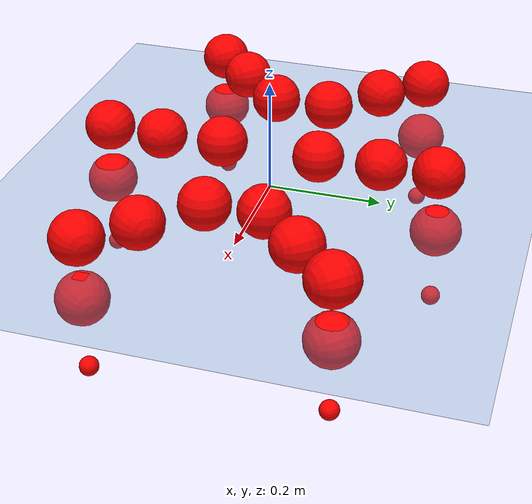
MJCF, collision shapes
<mujoco model="Golem">
  <compiler angle="radian" assetdir="assets" balanceinertia="true" inertiafromgeom="false"/>

  <option timestep="0.005" density="1.2" viscosity="2e-05"/>

  <size nkey="1"/>

  <visual>
    <quality shadowsize="8192"/>
    <map shadowclip="0.5"/>
  </visual>

  <default>
    <default class="/">
      <joint armature="0.01" damping="0.01" frictionloss="0.01"/>
      <geom contype="0" conaffinity="0" group="1" solref="-1000 -80"/>
      <site size="0.01 0.005 0.005" group="5"/>
      <general forcelimited="true" biastype="affine" gainprm="25" biasprm="0 -25 -0.5"/>
      <default class="visual">
        <geom type="mesh" group="2"/>
      </default>
      <default class="collision">
        <geom group="3"/>
      </default>
      <default class="foot">
        <geom size="0.01 0 0" condim="6" group="4" priority="1" solimp="0.015 1 0.01"/>
      </default>
      <default class="reward_collision_sphere">
        <geom group="5" rgba="1 0 0 1"/>
      </default>
    </default>
  </default>

  <asset>
    <texture type="skybox" colorspace="auto" name="//unnamed_texture_0" builtin="gradient" rgb1="0.95 0.95 0.95" rgb2="0.95 0.95 0.95" width="100" height="600"/>
    <texture type="2d" colorspace="auto" name="texplane" builtin="checker" rgb1="0.345 0.575 0.748" rgb2="0.345 0.575 0.748" markrgb="1 1 1" width="512" height="512"/>
    <material name="MatPlane" class="/" texture="texplane" texuniform="true" texrepeat="2 2" specular="0.9"/>
    <mesh name="body" class="/" file="body.stl" scale="0.001 0.001 0.001"/>
    <mesh name="coxa" class="/" file="coxa.stl" scale="0.001 0.001 0.001"/>
    <mesh name="femur" class="/" file="femur.stl" scale="0.001 0.001 0.001"/>
    <mesh name="tibia" class="/" file="tibia.stl" scale="0.001 0.001 0.001"/>
    <mesh name="tarsus" class="/" file="tarsus.stl" scale="0.001 0.001 0.001"/>
  </asset>

  <worldbody>
    <geom name="floor" class="/" size="100 100 0.125" type="plane" group="0" material="MatPlane"/>
    <light name="toplight_shadow" class="/" pos="0 0 5" dir="0.0990148 0.0990148 -0.990148" type="directional" ambient="0.04 0.04 0.04" diffuse="0.55 0.55 0.55" specular="0.12 0.12 0.12"/>
    <light name="toplight_fill" class="/" pos="0 0 5" dir="0.0990148 0.0990148 -0.990148" type="directional" castshadow="false" ambient="0.04 0.04 0.04" diffuse="0.3 0.3 0.3" specular="0.08 0.08 0.08"/>
    <body name="trunk" pos="-0.00270113 -0.000309857 -0.00207198" quat="1 9.496e-05 0.000347204 -0.00027631">
      <inertial pos="0.00135373 -0.000537449 -0.00384915" quat="0.999925 0.0109084 -0.00557545 3.27136e-05" mass="5.1932" diaginertia="0.0338301 0.00779663 0.019384"/>
      <joint name="//unnamed_joint_0" type="free"/>
      <geom name="//unnamed_geom_1" class="/" pos="0 0 0.0732671" quat="1 0 0 0" type="mesh" rgba="0.9 0.9 0.9 1" mesh="body"/>
      <site name="imu" class="/" pos="0.175323 -0.00343288 0.105173" size="0.0112632"/>
      <camera name="track" class="/" pos="0 -1.90646 0" quat="0.707107 0.707107 0 0" mode="trackcom"/>
      <camera name="ego_camera" class="/" pos="0.166521 0 0.11448" quat="-0.5 -0.5 0.5 0.5"/>
      <body name="coxa_RR" pos="-0.228345 -0.0762434 0.0732214" quat="0.382696 1.27624e-05 -4.49182e-05 -0.923874">
        <inertial pos="-0.000698164 0.000378653 -0.00126503" quat="0.999917 -0.000798253 -0.00580739 -0.0114961" mass="0.274609" diaginertia="0.034409 0.00760757 0.0189374"/>
        <joint name="coxa_joint_RR" class="/" pos="0 0 0" axis="0.00280962 -0.00653001 -0.999975" range="-3.17013 3.18862" armature="0.0102527" damping="0.00240979" frictionloss="0.00995492"/>
        <geom name="//unnamed_geom_2" class="/" type="mesh" rgba="0.2 0.2 0.2 1" mesh="coxa"/>
        <geom name="//unnamed_geom_3" class="reward_collision_sphere" size="0.0450528" pos="-0.038428 0 0"/>
        <body name="femur_RR" pos="0.0762021 0.00120247 0.0021432" quat="0.499923 -0.500197 0.500264 0.499616">
          <inertial pos="-0.0013459 0.00247919 0.00196773" quat="0.999995 0.00070255 -0.00310158 -0.000210645" mass="0.28556" diaginertia="0.0356559 0.00793557 0.0202632"/>
          <joint name="femur_joint_RR" class="/" pos="0 0 0" axis="1.28485e-05 -0.0025549 -0.999997" range="-3.15597 3.14023" armature="0.0115776" damping="0.0202778" frictionloss="0.0123553"/>
          <geom name="//unnamed_geom_4" class="/" type="mesh" rgba="0.9 0.9 0.9 1" mesh="femur"/>
          <geom name="//unnamed_geom_5" class="reward_collision_sphere" size="0.0450528"/>
          <body name="tibia_RR" pos="0.00108846 -0.101531 -0.00171911" quat="-0.000118016 1 0.000162032 -0.000413564">
            <inertial pos="0.0021381 -0.00151351 0.00067064" quat="0.999987 -0.00231923 0.0040905 0.00198737" mass="0.291711" diaginertia="0.034215 0.00790797 0.0196965"/>
            <joint name="tibia_joint_RR" class="/" pos="0 0 0" axis="-0.00290447 0.00412535 0.999987" range="-3.14024 3.14077" armature="0.0105707" damping="0.0203647" frictionloss="0.00982206"/>
            <geom name="//unnamed_geom_6" class="/" type="mesh" rgba="0.2 0.2 0.2 1" mesh="tibia"/>
            <geom name="//unnamed_geom_7" class="reward_collision_sphere" size="0.0450528"/>
            <body name="tarsus_RR" pos="0.110263 -0.000106907 -2.82256e-06" quat="1 -0.000169321 0.000499573 5.21712e-05">
              <inertial pos="0.0746473 -0.00127215 0.000586715" quat="0.501409 0.505225 0.502829 0.490408" mass="0.293301" diaginertia="0.0352965 0.00780893 0.0192902"/>
              <joint name="tarsus_joint_RR" class="/" pos="0 0 0" axis="0.00286522 0.00533279 0.999982" range="-3.18069 3.17531" armature="0.010833" damping="0.0124415" frictionloss="0.0113342"/>
              <geom name="//unnamed_geom_8" class="/" type="mesh" rgba="0.9 0.9 0.9 1" mesh="tarsus"/>
              <geom name="foot_1" class="foot" size="0.012369" pos="0.143464 0 0" quat="0 -0.707107 0 0.707107"/>
              <geom name="//unnamed_geom_10" class="reward_collision_sphere" size="0.0450528"/>
              <geom name="//unnamed_geom_11" class="reward_collision_sphere" size="0.0168948" pos="0.1377 0 0"/>
              <site name="foot_1" class="foot" pos="0.143464 0 0" quat="0 -0.707107 0 0.707107" size="0.0112632"/>
            </body>
          </body>
        </body>
      </body>
      <body name="coxa_RM" pos="-0.00265464 -0.127405 0.0764244" quat="0.706449 2.21383e-05 0.000163729 -0.707764">
        <inertial pos="-0.000866926 -0.00237431 -0.000338902" quat="0.999939 -0.00233138 -0.0102501 -0.00331941" mass="0.292079" diaginertia="0.035704 0.00786011 0.020303"/>
        <joint name="coxa_joint_RM" class="/" pos="0 0 0" axis="-0.00388531 -0.000117976 -0.999992" range="-3.12754 3.12073" armature="0.0114746" damping="0.0037697" frictionloss="0.0118665"/>
        <geom name="//unnamed_geom_12" class="/" type="mesh" rgba="0.2 0.2 0.2 1" mesh="coxa"/>
        <geom name="//unnamed_geom_13" class="reward_collision_sphere" size="0.0450528" pos="-0.038428 0 0"/>
        <body name="femur_RM" pos="0.0755992 -0.000305882 -0.00208017" quat="0.500835 -0.499025 0.500107 0.500031">
          <inertial pos="-0.00240402 -0.00243171 -0.00194296" quat="0.999986 0.00360428 -0.00137344 0.00361198" mass="0.295056" diaginertia="0.0348787 0.00783355 0.0200591"/>
          <joint name="femur_joint_RM" class="/" pos="0 0 0" axis="0.00672859 -0.00913381 -0.999936" stiffness="0.00137615" range="-3.14299 3.18942" armature="0.0119404" damping="0.0172995" frictionloss="0.00977081"/>
          <geom name="//unnamed_geom_14" class="/" type="mesh" rgba="0.9 0.9 0.9 1" mesh="femur"/>
          <geom name="//unnamed_geom_15" class="reward_collision_sphere" size="0.0450528"/>
          <body name="tibia_RM" pos="-0.00308185 -0.100044 0.00179004" quat="-0.000122488 1 -0.000955671 -4.03172e-05">
            <inertial pos="-0.000854495 -0.000312952 0.000869248" quat="1 -0.000313751 -0.000407016 0.000370278" mass="0.286904" diaginertia="0.0361721 0.00821958 0.0196809"/>
            <joint name="tibia_joint_RM" class="/" pos="0 0 0" axis="0.00464102 0.0109955 0.999929" range="-3.11824 3.08437" armature="0.0118917" damping="0" frictionloss="0.0121984"/>
            <geom name="//unnamed_geom_16" class="/" type="mesh" rgba="0.2 0.2 0.2 1" mesh="tibia"/>
            <geom name="//unnamed_geom_17" class="reward_collision_sphere" size="0.0450528"/>
            <body name="tarsus_RM" pos="0.108814 0.00104096 -0.00226368" quat="1 0.000335187 -0.00040934 0.000104795">
              <inertial pos="0.0770853 0.000847158 0.00296476" quat="0.503896 0.505268 0.502761 0.487877" mass="0.288014" diaginertia="0.0359028 0.00792966 0.0193173"/>
              <joint name="tarsus_joint_RM" class="/" pos="0 0 0" axis="-0.00293942 0.00246619 0.999993" range="-3.1938 3.09264" armature="0.0114606" damping="0.0103859" frictionloss="0.0113536"/>
              <geom name="//unnamed_geom_18" class="/" type="mesh" rgba="0.9 0.9 0.9 1" mesh="tarsus"/>
              <geom name="foot_2" class="foot" size="0.01154" pos="0.143464 0 0" quat="0 -0.707107 0 0.707107"/>
              <geom name="//unnamed_geom_20" class="reward_collision_sphere" size="0.0450528"/>
              <geom name="//unnamed_geom_21" class="reward_collision_sphere" size="0.0168948" pos="0.1377 0 0"/>
              <site name="foot_2" class="foot" pos="0.143464 0 0" quat="0 -0.707107 0 0.707107" size="0.0112632"/>
            </body>
          </body>
        </body>
      </body>
      <body name="coxa_RF" pos="0.228554 -0.0772024 0.0719029" quat="0.923687 -0.000824247 1.16379e-05 -0.383147">
        <inertial pos="0.00126266 -0.00163381 -0.000375996" quat="0.999999 -0.00117164 0.000493239 -0.00033064" mass="0.293988" diaginertia="0.0352172 0.00803019 0.0200868"/>
        <joint name="coxa_joint_RF" class="/" pos="0 0 0" axis="-0.00349574 0.00835262 -0.999959" range="-3.14105 3.19278" armature="0.0118552" damping="0" frictionloss="0.0109597"/>
        <geom name="//unnamed_geom_22" class="/" type="mesh" rgba="0.2 0.2 0.2 1" mesh="coxa"/>
        <geom name="//unnamed_geom_23" class="reward_collision_sphere" size="0.0450528" pos="-0.038428 0 0"/>
        <body name="femur_RF" pos="0.0781981 -0.00156115 -0.0030804" quat="0.500123 -0.499875 0.500168 0.499833">
          <inertial pos="-0.00102726 -5.6136e-05 0.00288567" quat="1 -0.000386251 3.70385e-05 0.000173994" mass="0.28336" diaginertia="0.0346674 0.00788489 0.0202718"/>
          <joint name="femur_joint_RF" class="/" pos="0 0 0" axis="0.000705146 0.00100594 -0.999999" range="-3.09013 3.12953" armature="0.0111626" damping="0.0106735" frictionloss="0.00968633"/>
          <geom name="//unnamed_geom_24" class="/" type="mesh" rgba="0.9 0.9 0.9 1" mesh="femur"/>
          <geom name="//unnamed_geom_25" class="reward_collision_sphere" size="0.0450528"/>
          <body name="tibia_RF" pos="-0.00358384 -0.103134 0.00183553" quat="-0.000340589 1 -1.20179e-05 -6.84968e-05">
            <inertial pos="0.00283272 -0.00182578 -0.000182102" quat="0.99994 -0.00942308 0.000781705 -0.0055969" mass="0.285678" diaginertia="0.0337906 0.00761061 0.0197256"/>
            <joint name="tibia_joint_RF" class="/" pos="0 0 0" axis="-0.00657865 0.0112547 0.999915" range="-3.13897 3.13766" armature="0.0109262" damping="0.013039" frictionloss="0.0117543"/>
            <geom name="//unnamed_geom_26" class="/" type="mesh" rgba="0.2 0.2 0.2 1" mesh="tibia"/>
            <geom name="//unnamed_geom_27" class="reward_collision_sphere" size="0.0450528"/>
            <body name="tarsus_RF" pos="0.113747 1.21892e-05 -0.00152586" quat="0.999999 -0.000541661 3.15778e-05 -0.00102711">
              <inertial pos="0.078874 -0.00252302 0.000969424" quat="0.502311 0.49909 0.499693 0.498899" mass="0.279399" diaginertia="0.0347892 0.00764176 0.0202927"/>
              <joint name="tarsus_joint_RF" class="/" pos="0 0 0" axis="-0.00713078 0.0139884 0.999877" range="-3.19637 3.14044" armature="0.0111336" damping="0.017585" frictionloss="0.0110993"/>
              <geom name="//unnamed_geom_28" class="/" type="mesh" rgba="0.9 0.9 0.9 1" mesh="tarsus"/>
              <geom name="foot_3" class="foot" size="0.0109197" pos="0.143464 0 0" quat="0 -0.707107 0 0.707107"/>
              <geom name="//unnamed_geom_30" class="reward_collision_sphere" size="0.0450528"/>
              <geom name="//unnamed_geom_31" class="reward_collision_sphere" size="0.0168948" pos="0.1377 0 0"/>
              <site name="foot_3" class="foot" pos="0.143464 0 0" quat="0 -0.707107 0 0.707107" size="0.0112632"/>
            </body>
          </body>
        </body>
      </body>
      <body name="coxa_LR" pos="-0.226512 0.080832 0.07455" quat="0.381849 -0.000119313 -3.17411e-05 0.924225">
        <inertial pos="0.000786422 0.000127398 0.00288433" quat="0.999988 0.00181232 0.00428755 -0.00166013" mass="0.288191" diaginertia="0.0347657 0.00802316 0.0192607"/>
        <joint name="coxa_joint_LR" class="/" pos="0 0 0" axis="0.0017448 -0.00028933 -0.999998" range="-3.17576 3.15066" armature="0.0105054" damping="0.001641" frictionloss="0.00991768"/>
        <geom name="//unnamed_geom_32" class="/" type="mesh" rgba="0.2 0.2 0.2 1" mesh="coxa"/>
        <geom name="//unnamed_geom_33" class="reward_collision_sphere" size="0.0450528" pos="-0.038428 0 0"/>
        <body name="femur_LR" pos="0.0757573 -0.00361981 -1.0466e-05" quat="0.500002 -0.499993 0.500009 0.499995">
          <inertial pos="0.0026859 -0.00174277 0.00268947" quat="0.99999 0.000583794 0.00277873 -0.00330849" mass="0.277878" diaginertia="0.0345945 0.00780972 0.0198098"/>
          <joint name="femur_joint_LR" class="/" pos="0 0 0" axis="0.00200279 -0.00477362 0.999987" range="-3.18075 3.08862" armature="0.00989164" damping="0" frictionloss="0.0114868"/>
          <geom name="//unnamed_geom_34" class="/" type="mesh" rgba="0.9 0.9 0.9 1" mesh="femur"/>
          <geom name="//unnamed_geom_35" class="reward_collision_sphere" size="0.0450528"/>
          <body name="tibia_LR" pos="0.00349333 -0.102387 -0.000211559" quat="-0.000951911 0.999999 1.48707e-05 0.00033984">
            <inertial pos="0.00204842 -0.00262735 0.00119826" quat="1 -0.000324956 0.000172228 -5.9303e-05" mass="0.29552" diaginertia="0.0343096 0.00813431 0.019011"/>
            <joint name="tibia_joint_LR" class="/" pos="0 0 0" axis="-0.0129003 0.00327606 -0.999911" range="-3.16296 3.08361" armature="0.0107864" damping="0.00915632" frictionloss="0.0115714"/>
            <geom name="//unnamed_geom_36" class="/" type="mesh" rgba="0.2 0.2 0.2 1" mesh="tibia"/>
            <geom name="//unnamed_geom_37" class="reward_collision_sphere" size="0.0450528"/>
            <body name="tarsus_LR" pos="0.11602 -0.00110538 -0.00229385" quat="0.999999 0.00112962 5.03228e-05 -0.000570989">
              <inertial pos="0.0748378 -0.00256293 -0.000394955" quat="0.500243 0.499246 0.500152 0.500359" mass="0.287285" diaginertia="0.0350093 0.00771226 0.020489"/>
              <joint name="tarsus_joint_LR" class="/" pos="0 0 0" axis="0.00354401 -0.000613721 -0.999994" range="-3.13916 3.13175" armature="0.0120636" damping="0.0297066" frictionloss="0.0127593"/>
              <geom name="//unnamed_geom_38" class="/" type="mesh" rgba="0.9 0.9 0.9 1" mesh="tarsus"/>
              <geom name="foot_4" class="foot" size="0.0110019" pos="0.143464 0 0" quat="0.707107 0 -0.707107 0"/>
              <geom name="//unnamed_geom_40" class="reward_collision_sphere" size="0.0450528"/>
              <geom name="//unnamed_geom_41" class="reward_collision_sphere" size="0.0168948" pos="0.1377 0 0"/>
              <site name="foot_4" class="foot" pos="0.143464 0 0" quat="0.707107 0 -0.707107 0" size="0.0112632"/>
            </body>
          </body>
        </body>
      </body>
      <body name="coxa_LM" pos="-0.00154468 0.125064 0.0742303" quat="0.707344 0.000531511 9.1678e-05 0.706869">
        <inertial pos="0.002896 -0.0003112 0.00137364" quat="0.999991 -0.00151589 0.00401606 -0.000597252" mass="0.276273" diaginertia="0.0340585 0.00759489 0.0190211"/>
        <joint name="coxa_joint_LM" class="/" pos="0 0 0" axis="0.00472467 -0.00261484 -0.999985" stiffness="0.00581601" range="-3.16126 3.14419" armature="0.0114888" damping="0" frictionloss="0.00986853"/>
        <geom name="//unnamed_geom_42" class="/" type="mesh" rgba="0.2 0.2 0.2 1" mesh="coxa"/>
        <geom name="//unnamed_geom_43" class="reward_collision_sphere" size="0.0450528" pos="-0.038428 0 0"/>
        <body name="femur_LM" pos="0.073148 0.000252925 0.00178302" quat="0.499789 -0.500099 0.500104 0.500008">
          <inertial pos="0.00255287 -0.000299552 -0.00223387" quat="0.999997 0.00142278 0.00222042 6.87857e-05" mass="0.292338" diaginertia="0.03488 0.0082291 0.021027"/>
          <joint name="femur_joint_LM" class="/" pos="0 0 0" axis="-0.00602293 0.0107843 0.999924" range="-3.09117 3.10272" armature="0.0114339" damping="0.00973285" frictionloss="0.0112081"/>
          <geom name="//unnamed_geom_44" class="/" type="mesh" rgba="0.9 0.9 0.9 1" mesh="femur"/>
          <geom name="//unnamed_geom_45" class="reward_collision_sphere" size="0.0450528"/>
          <body name="tibia_LM" pos="-0.0016053 -0.0990186 -0.00112303" quat="0.000139632 1 -0.000123439 0.00022632">
            <inertial pos="-0.00243896 0.000107275 0.000251999" quat="0.999996 -0.00106357 -0.00182292 0.0017355" mass="0.28077" diaginertia="0.0342249 0.00777802 0.0200638"/>
            <joint name="tibia_joint_LM" class="/" pos="0 0 0" axis="-0.00198406 0.00130328 -0.999997" stiffness="0.0119048" range="-3.1369 3.10452" armature="0.00971605" damping="0.0129657" frictionloss="0.0103231"/>
            <geom name="//unnamed_geom_46" class="/" type="mesh" rgba="0.2 0.2 0.2 1" mesh="tibia"/>
            <geom name="//unnamed_geom_47" class="reward_collision_sphere" size="0.0450528"/>
            <body name="tarsus_LM" pos="0.115903 0.00246854 -0.00135592" quat="1 -0.00038362 -0.000147781 3.77141e-05">
              <inertial pos="0.0743757 0.00042772 -0.00251117" quat="0.492646 0.495226 0.501294 0.510642" mass="0.284411" diaginertia="0.033424 0.00787235 0.0190973"/>
              <joint name="tarsus_joint_LM" class="/" pos="0 0 0" axis="-0.00163865 -0.00566088 -0.999983" stiffness="0.000455414" range="-3.0836 3.13744" armature="0.0115487" damping="0.018472" frictionloss="0.0107062"/>
              <geom name="//unnamed_geom_48" class="/" type="mesh" rgba="0.9 0.9 0.9 1" mesh="tarsus"/>
              <geom name="foot_5" class="foot" size="0.0120084" pos="0.143464 0 0" quat="0.707107 0 -0.707107 0"/>
              <geom name="//unnamed_geom_50" class="reward_collision_sphere" size="0.0450528"/>
              <geom name="//unnamed_geom_51" class="reward_collision_sphere" size="0.0168948" pos="0.1377 0 0"/>
              <site name="foot_5" class="foot" pos="0.143464 0 0" quat="0.707107 0 -0.707107 0" size="0.0112632"/>
            </body>
          </body>
        </body>
      </body>
      <body name="coxa_LF" pos="0.227207 0.0786004 0.0745125" quat="0.923991 -0.000393503 0.0002347 0.382414">
        <inertial pos="3.68775e-05 -0.00193337 -0.000343691" quat="0.999912 0.00471131 -0.0105001 -0.00666841" mass="0.293073" diaginertia="0.0353378 0.00810462 0.0203089"/>
        <joint name="coxa_joint_LF" class="/" pos="0 0 0" axis="0.00797594 -0.00117204 -0.999968" range="-3.08356 3.13753" armature="0.0124481" damping="0.0171006" frictionloss="0.00968954"/>
        <geom name="//unnamed_geom_52" class="/" type="mesh" rgba="0.2 0.2 0.2 1" mesh="coxa"/>
        <geom name="//unnamed_geom_53" class="reward_collision_sphere" size="0.0450528" pos="-0.038428 0 0"/>
        <body name="femur_LF" pos="0.0732659 -0.0016523 0.00159778" quat="0.500201 -0.500099 0.499797 0.499903">
          <inertial pos="0.00076837 0.00251331 -0.00265545" quat="0.999999 -0.000872452 0.000255727 -0.000997792" mass="0.29316" diaginertia="0.0358811 0.00810988 0.0195391"/>
          <joint name="femur_joint_LF" class="/" pos="0 0 0" axis="-0.000221915 -0.00247341 0.999997" range="-3.12969 3.13731" armature="0.0127163" damping="0" frictionloss="0.0115602"/>
          <geom name="//unnamed_geom_54" class="/" type="mesh" rgba="0.9 0.9 0.9 1" mesh="femur"/>
          <geom name="//unnamed_geom_55" class="reward_collision_sphere" size="0.0450528"/>
          <body name="tibia_LF" pos="0.000665863 -0.10529 0.000998674" quat="-1.52283e-05 1 8.86429e-07 7.40817e-05">
            <inertial pos="0.00236997 0.00248364 0.00182955" quat="0.999994 -0.0022035 0.000154474 -0.00259535" mass="0.285619" diaginertia="0.0341876 0.00812889 0.0201524"/>
            <joint name="tibia_joint_LF" class="/" pos="0 0 0" axis="-0.00214628 -0.00570957 -0.999981" stiffness="0.00959036" range="-3.08564 3.08997" armature="0.0116022" damping="0.00309566" frictionloss="0.00980434"/>
            <geom name="//unnamed_geom_56" class="/" type="mesh" rgba="0.2 0.2 0.2 1" mesh="tibia"/>
            <geom name="//unnamed_geom_57" class="reward_collision_sphere" size="0.0450528"/>
            <body name="tarsus_LF" pos="0.11021 0.00226432 -4.96211e-05" quat="1 -6.2354e-05 -3.40077e-05 -0.00022847">
              <inertial pos="0.074542 0.000350193 0.00238744" quat="0.494068 0.506831 0.506974 0.491931" mass="0.285167" diaginertia="0.0356289 0.00788543 0.0201316"/>
              <joint name="tarsus_joint_LF" class="/" pos="0 0 0" axis="0.0028637 0.00119508 -0.999995" stiffness="0.00834077" range="-3.19522 3.09191" armature="0.0126528" damping="0.0108704" frictionloss="0.0125563"/>
              <geom name="//unnamed_geom_58" class="/" type="mesh" rgba="0.9 0.9 0.9 1" mesh="tarsus"/>
              <geom name="foot_6" class="foot" size="0.0122316" pos="0.143464 0 0" quat="0.707107 0 -0.707107 0"/>
              <geom name="//unnamed_geom_60" class="reward_collision_sphere" size="0.0450528"/>
              <geom name="//unnamed_geom_61" class="reward_collision_sphere" size="0.0168948" pos="0.1377 0 0"/>
              <site name="foot_6" class="foot" pos="0.143464 0 0" quat="0.707107 0 -0.707107 0" size="0.0112632"/>
            </body>
          </body>
        </body>
      </body>
    </body>
  </worldbody>

  <contact>
    <pair class="/" geom1="floor" geom2="foot_1" name="//unnamed_contact_0"/>
    <pair class="/" geom1="floor" geom2="foot_2" name="//unnamed_contact_1"/>
    <pair class="/" geom1="floor" geom2="foot_3" name="//unnamed_contact_2"/>
    <pair class="/" geom1="floor" geom2="foot_4" name="//unnamed_contact_3"/>
    <pair class="/" geom1="floor" geom2="foot_5" name="//unnamed_contact_4"/>
    <pair class="/" geom1="floor" geom2="foot_6" name="//unnamed_contact_5"/>
  </contact>

  <actuator>
    <general name="coxa_joint_RR" class="/" joint="coxa_joint_RR" forcerange="-8.35225 8.35225" gainprm="28.6589" biasprm="0 -28.6589 -0.603052"/>
    <general name="femur_joint_RR" class="/" joint="femur_joint_RR" forcerange="-8.38421 8.38421" gainprm="28.6589" biasprm="0 -28.6589 -0.603052"/>
    <general name="tibia_joint_RR" class="/" joint="tibia_joint_RR" forcerange="-8.29065 8.29065" gainprm="28.6589" biasprm="0 -28.6589 -0.603052"/>
    <general name="tarsus_joint_RR" class="/" joint="tarsus_joint_RR" forcerange="-7.94049 7.94049" gainprm="28.6589" biasprm="0 -28.6589 -0.603052"/>
    <general name="coxa_joint_RM" class="/" joint="coxa_joint_RM" forcerange="-8.49223 8.49223" gainprm="28.6589" biasprm="0 -28.6589 -0.603052"/>
    <general name="femur_joint_RM" class="/" joint="femur_joint_RM" forcerange="-8.38215 8.38215" gainprm="28.6589" biasprm="0 -28.6589 -0.603052"/>
    <general name="tibia_joint_RM" class="/" joint="tibia_joint_RM" forcerange="-8.32427 8.32427" gainprm="28.6589" biasprm="0 -28.6589 -0.603052"/>
    <general name="tarsus_joint_RM" class="/" joint="tarsus_joint_RM" forcerange="-7.35627 7.35627" gainprm="28.6589" biasprm="0 -28.6589 -0.603052"/>
    <general name="coxa_joint_RF" class="/" joint="coxa_joint_RF" forcerange="-8.46078 8.46078" gainprm="28.6589" biasprm="0 -28.6589 -0.603052"/>
    <general name="femur_joint_RF" class="/" joint="femur_joint_RF" forcerange="-8.27293 8.27293" gainprm="28.6589" biasprm="0 -28.6589 -0.603052"/>
    <general name="tibia_joint_RF" class="/" joint="tibia_joint_RF" forcerange="-8.23852 8.23852" gainprm="28.6589" biasprm="0 -28.6589 -0.603052"/>
    <general name="tarsus_joint_RF" class="/" joint="tarsus_joint_RF" forcerange="-8.27955 8.27955" gainprm="28.6589" biasprm="0 -28.6589 -0.603052"/>
    <general name="coxa_joint_LR" class="/" joint="coxa_joint_LR" forcerange="-7.98297 7.98297" gainprm="28.6589" biasprm="0 -28.6589 -0.603052"/>
    <general name="femur_joint_LR" class="/" joint="femur_joint_LR" forcerange="-7.3733 7.3733" gainprm="28.6589" biasprm="0 -28.6589 -0.603052"/>
    <general name="tibia_joint_LR" class="/" joint="tibia_joint_LR" forcerange="-7.92404 7.92404" gainprm="28.6589" biasprm="0 -28.6589 -0.603052"/>
    <general name="tarsus_joint_LR" class="/" joint="tarsus_joint_LR" forcerange="-8.28895 8.28895" gainprm="28.6589" biasprm="0 -28.6589 -0.603052"/>
    <general name="coxa_joint_LM" class="/" joint="coxa_joint_LM" forcerange="-8.09591 8.09591" gainprm="28.6589" biasprm="0 -28.6589 -0.603052"/>
    <general name="femur_joint_LM" class="/" joint="femur_joint_LM" forcerange="-7.64902 7.64902" gainprm="28.6589" biasprm="0 -28.6589 -0.603052"/>
    <general name="tibia_joint_LM" class="/" joint="tibia_joint_LM" forcerange="-8.19829 8.19829" gainprm="28.6589" biasprm="0 -28.6589 -0.603052"/>
    <general name="tarsus_joint_LM" class="/" joint="tarsus_joint_LM" forcerange="-8.95436 8.95436" gainprm="28.6589" biasprm="0 -28.6589 -0.603052"/>
    <general name="coxa_joint_LF" class="/" joint="coxa_joint_LF" forcerange="-8.09072 8.09072" gainprm="28.6589" biasprm="0 -28.6589 -0.603052"/>
    <general name="femur_joint_LF" class="/" joint="femur_joint_LF" forcerange="-9.07988 9.07988" gainprm="28.6589" biasprm="0 -28.6589 -0.603052"/>
    <general name="tibia_joint_LF" class="/" joint="tibia_joint_LF" forcerange="-8.20553 8.20553" gainprm="28.6589" biasprm="0 -28.6589 -0.603052"/>
    <general name="tarsus_joint_LF" class="/" joint="tarsus_joint_LF" forcerange="-7.68895 7.68895" gainprm="28.6589" biasprm="0 -28.6589 -0.603052"/>
  </actuator>

  <sensor>
    <gyro site="imu" name="imu_angular_velocity"/>
    <velocimeter site="imu" name="imu_linear_velocity"/>
    <framelinvel objtype="site" objname="foot_1" name="foot_1_global_linear_velocity"/>
    <framelinvel objtype="site" objname="foot_2" name="foot_2_global_linear_velocity"/>
    <framelinvel objtype="site" objname="foot_3" name="foot_3_global_linear_velocity"/>
    <framelinvel objtype="site" objname="foot_4" name="foot_4_global_linear_velocity"/>
    <framelinvel objtype="site" objname="foot_5" name="foot_5_global_linear_velocity"/>
    <framelinvel objtype="site" objname="foot_6" name="foot_6_global_linear_velocity"/>
  </sensor>

  <keyframe>
    <key name="home" qpos="0 0 0.1457 1 0 0 0 0 0 0 0 0 0 0 0 0 0 0 0 0 0 0 0 0 0 0 0 0 0 0 0"/>
  </keyframe>
</mujoco>
